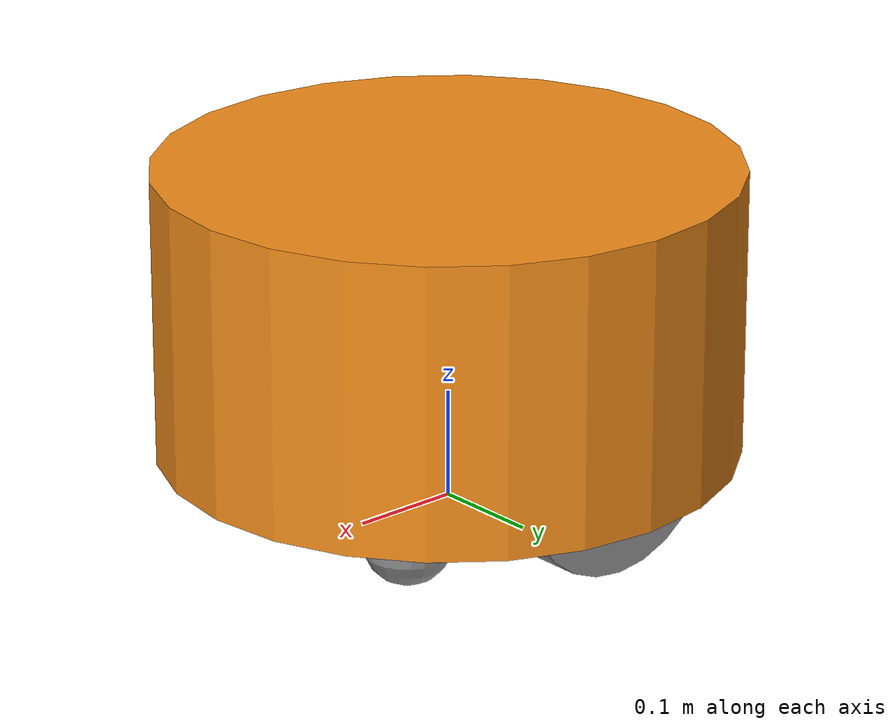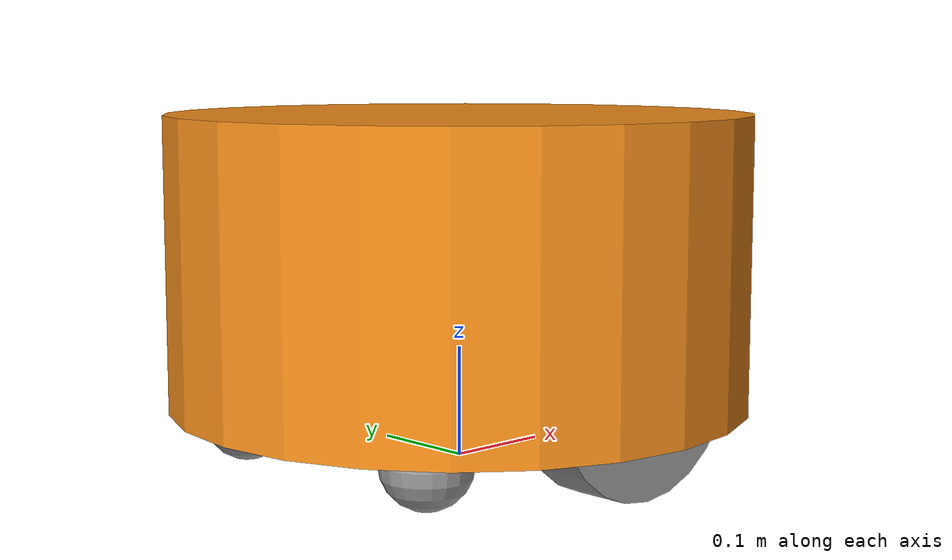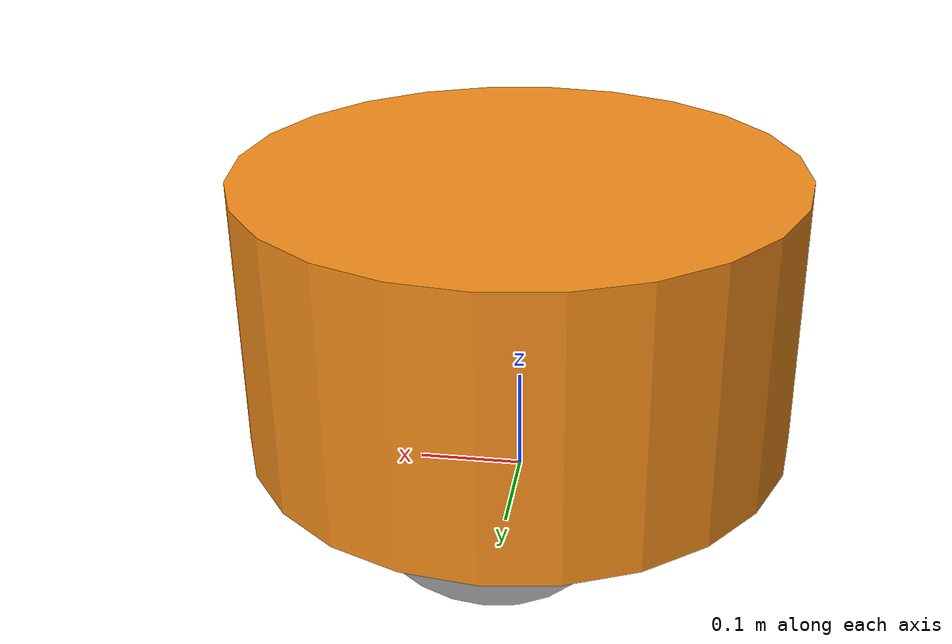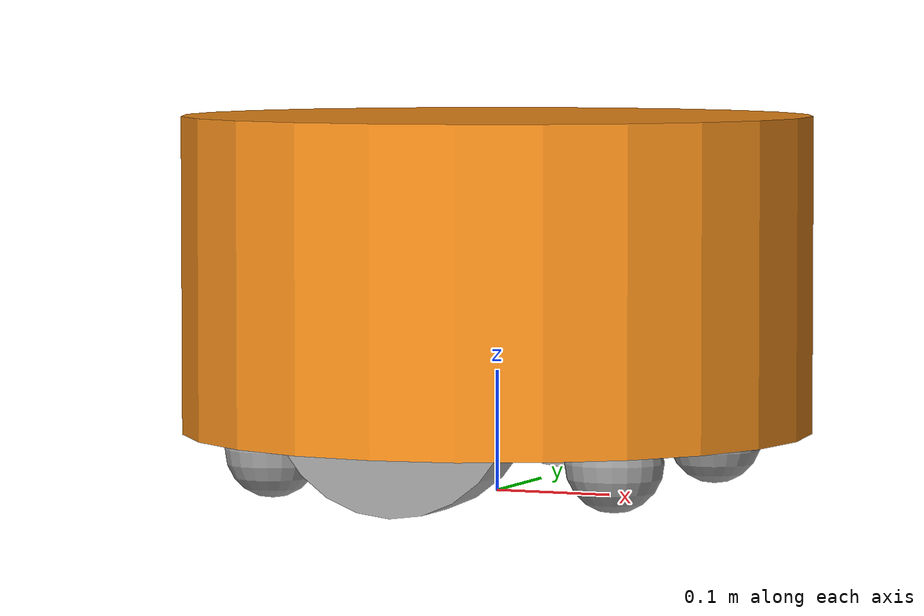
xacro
<robot name="robot_base" xmlns:xacro="http://www.ros.org/wiki/xacro">

    <xacro:property name="PI" value="3.1415926"/>

    <!-- 1. base_footprint -->
    <xacro:property name="footprint_radius" value="0.001" />
    <link name="base_footprint">
        <visual>
            <geometry>
                <sphere radius="${footprint_radius}"/>
            </geometry>
        </visual>
    </link>

    <!-- 2. 底盘base_link -->
    <xacro:property name="base_radius" value="0.2625" />
    <xacro:property name="base_height" value="0.2625" />
    <xacro:property name="base_mass" value="40" />
    <xacro:property name="earth_space" value="0.05" />
    <xacro:property name="base_joint_z" value="${base_height/2 + earth_space}" />
    <link name="base_link">
        <visual>
            <geometry>
                <cylinder radius="${base_radius}" length="${base_height}"/>
            </geometry>
            <material name="Orange"/>
        </visual>
        <!-- 碰撞属性（gazebo仿真必需项） -->
        <collision>
            <geometry>
                <cylinder radius="${base_radius}" length="${base_height}"/>
            </geometry>
        </collision>
        <!-- 调用惯性矩阵函数 -->
        <xacro:cylinder_inertial_matrix m="${base_mass}" r="${base_radius}" h="${base_height}" />
    </link>
    <!-- 设置base_footprint和base_link之间的joint -->
    <joint name="link2footprint" type="fixed">
        <parent link="base_footprint"/>
        <child link="base_link"/>
        <origin xyz="0 0 ${base_joint_z}" rpy="0 0 0"/>
    </joint>
    <!-- gazebo的颜色属性设置 -->
    <gazebo reference="base_link">
        <material>Gazebo/Orange</material>
    </gazebo>

    <!-- 3. 两个驱动轮 -->
    <xacro:property name="wheel_radius" value="0.108" />
    <xacro:property name="wheel_width" value="0.05" />
    <xacro:property name="wheel_mass" value="0.7" />
    <xacro:property name="wheel_joint_y" value="0.2" />
    <xacro:property name="wheel_joint_z" value="${-1 * (base_height/2 + earth_space - wheel_radius)}" />
    <xacro:macro name="wheel" params="wheel_name flag">
        <link name="${wheel_name}_wheel">
            <visual>
                <geometry>
                    <cylinder radius="${wheel_radius}" length="${wheel_width}"/>
                </geometry>
                <origin xyz="0.0 0.0 0.0" rpy="${PI / 2} 0.0 0.0"/>
                <material name="Gray" />
            </visual>
            <collision>
                <geometry>
                    <cylinder radius="${wheel_radius}" length="${wheel_width}"/>
                </geometry>
                <origin xyz="0.0 0.0 0.0" rpy="${PI / 2} 0.0 0.0"/>
            </collision>
            <xacro:cylinder_inertial_matrix m="${wheel_mass}" r="${wheel_radius}" h="${wheel_width}" />
        </link>
        <!-- wheel和base_link之间的joint -->
        <joint name="${wheel_name}2link" type="continuous">
            <parent link="base_link"/>
            <child link="${wheel_name}_wheel"/>
            <origin xyz="0.0 ${wheel_joint_y * flag} ${wheel_joint_z}" rpy="0.0 0.0 0.0"/>
            <axis xyz="0.0 1.0 0.0"/>
        </joint>
        <gazebo reference="${wheel_name}_wheel">
            <material>Gazebo/Gray</material>
        </gazebo>
        <!-- 为joint添加传动装置 -->
        <transmission name="${wheel_name}_wheel_joint_trans">
            <type>transmission_interface/SimpleTransmission</type>
            <joint name="${wheel_name}2link">
                <hardwareInterface>hardware_interface/VelocityJointInterface</hardwareInterface>
            </joint>
            <actuator name="${wheel_name}_wheel_joint_motor">
                <hardwareInterface>hardware_interface/VelocityJointInterface</hardwareInterface>
                <mechanicalReduction>1</mechanicalReduction>
            </actuator>
        </transmission>
    </xacro:macro>
    <!-- 调用驱动的宏 -->
    <xacro:wheel wheel_name="left" flag="1" />
    <xacro:wheel wheel_name="right" flag="-1" />

    <!-- 4. 四个支撑万向轮 -->
    <xacro:property name="caster_radius" value="0.04" />
    <xacro:property name="caster_mass" value="0.1" />
    <xacro:property name="caster_joint_x" value="0.15" />
    <xacro:property name="caster_joint_y" value="0.12" />
    <xacro:property name="caster_joint_z" value="${-1 * (base_height/2 + earth_space - caster_radius)}" />
    <xacro:macro name="caster" params="caster_name flag_x flag_y">
        <link name="${caster_name}_wheel">
            <visual>
                <geometry>
                    <sphere radius="${caster_radius}" />
                </geometry>
                <origin xyz="0.0 0.0 0.0" rpy="0.0 0.0 0.0"/>
                <material name="Gray" />
            </visual>
            <collision>
                <geometry>
                    <sphere radius="${caster_radius}" />
                </geometry>
                <origin xyz="0.0 0.0 0.0" rpy="0.0 0.0 0.0"/>
            </collision>
            <xacro:sphere_inertial_matrix m="${caster_mass}" r="${caster_radius}" />
        </link>
        <!-- caster和base_link之间的joint -->
        <joint name="${caster_name}2link" type="continuous">
            <parent link="base_link"/>
            <child link="${caster_name}_wheel"/>
            <origin xyz="${caster_joint_x * flag_x} ${caster_joint_y * flag_y} ${caster_joint_z}" rpy="0.0 0.0 0.0"/>
            <axis xyz="1.0 1.0 1.0"/>
        </joint>
        <gazebo reference="${caster_name}_wheel">
            <material>Gazebo/Gray</material>
        </gazebo>
    </xacro:macro>
    <!-- 调用万向轮的宏 -->
    <xacro:caster caster_name="front_l" flag_x="1" flag_y="1" />
    <xacro:caster caster_name="front_r" flag_x="1" flag_y="-1" />
    <xacro:caster caster_name="back_l" flag_x="-1" flag_y="1" />
    <xacro:caster caster_name="back_r" flag_x="-1" flag_y="-1" />

</robot>
